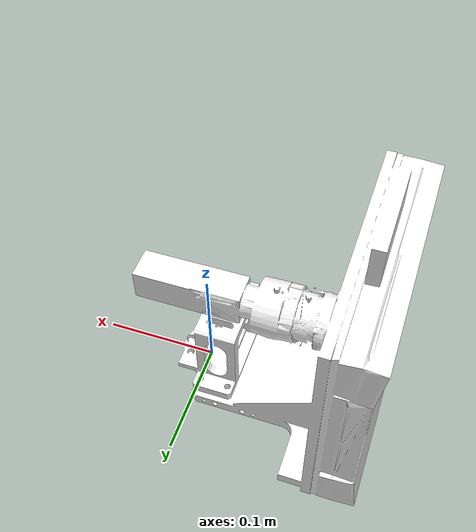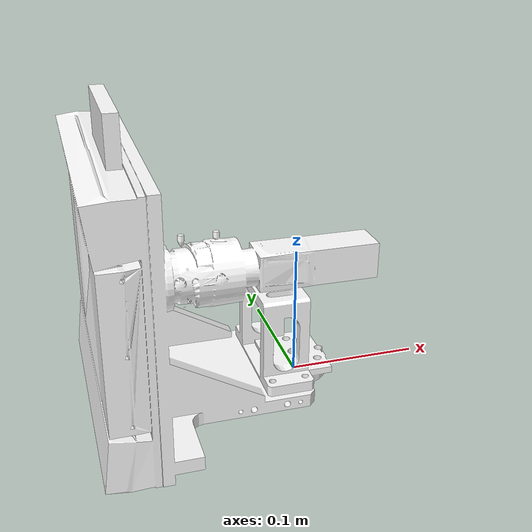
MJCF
<mujoco>
    <compiler angle="radian" strippath="true" autolimits="true" inertiafromgeom="true" />
	<include file="../common/default.xml" />
    <asset>
        <mesh name="camera" file="../assets/camera.stl" />
    </asset>
    <worldbody>
        <body name="camera" pos="0 0 0" euler="0 0 0">
            <geom name="camera" type="mesh" mesh="camera" pos="0 0 0" euler="0 0 0" class="collision"/>
            <inertial mass="0.07838302609574" pos="0.010628179378081623 -0.01388813373665584 0.004822849842420634"  />
        </body>
    </worldbody>
</mujoco>

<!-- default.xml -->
<mujoco>
    <default>

        <default class="ur5e">
            <material specular="0.5" shininess="0.25"/>
            <joint axis="0 1 0" range="-6.28319 6.28319" armature="0.1"/>
            <general gaintype="fixed" biastype="affine" ctrlrange="-6.2831 6.2831" gainprm="2000" biasprm="0 -2000 -200" forcerange="-150 150"/>
            <site size="0.001" rgba="0.5 0.5 0.5 0.3" group="4"/>
        </default>

        <default class="visual">
            <geom type="mesh" contype="0" conaffinity="0" group="2" rgba="1 1 1 1"/>
        </default>

        <default class="collision">
            <geom  type="mesh" contype="1" conaffinity="1" group="2" rgba="1 1 1 1"/>
        </default>
    </default>
</mujoco>
